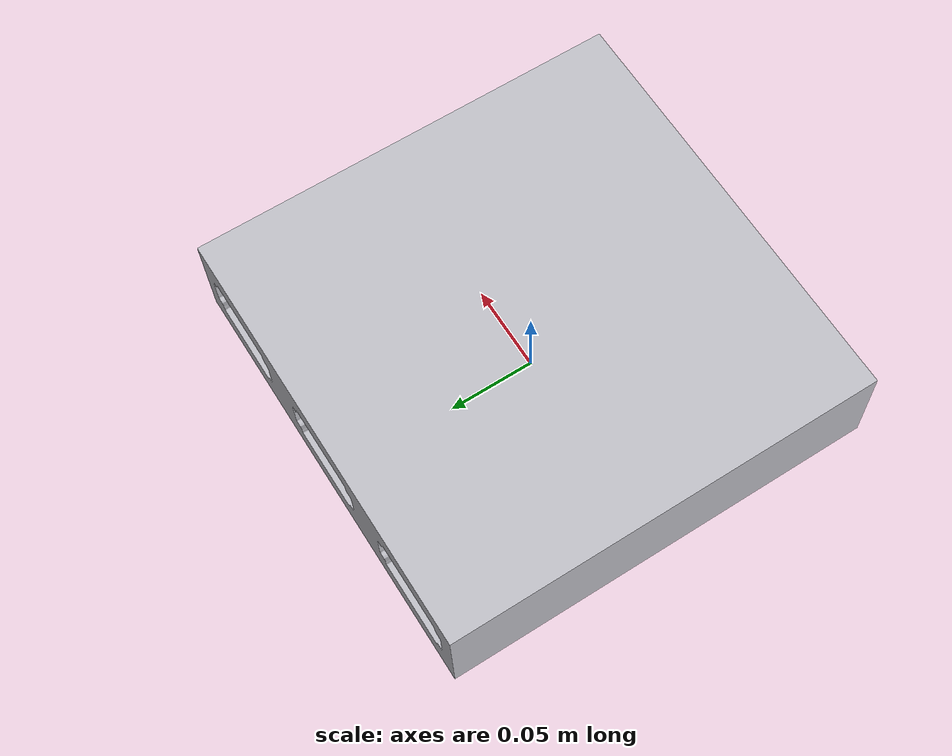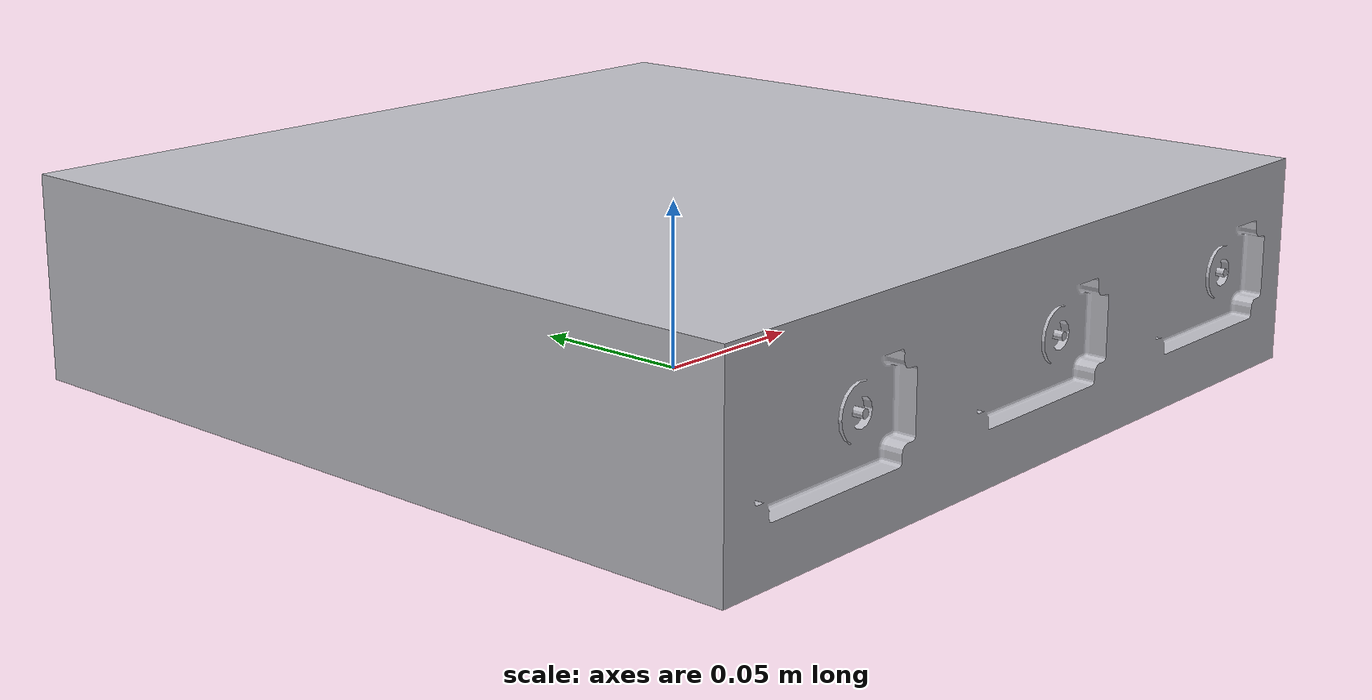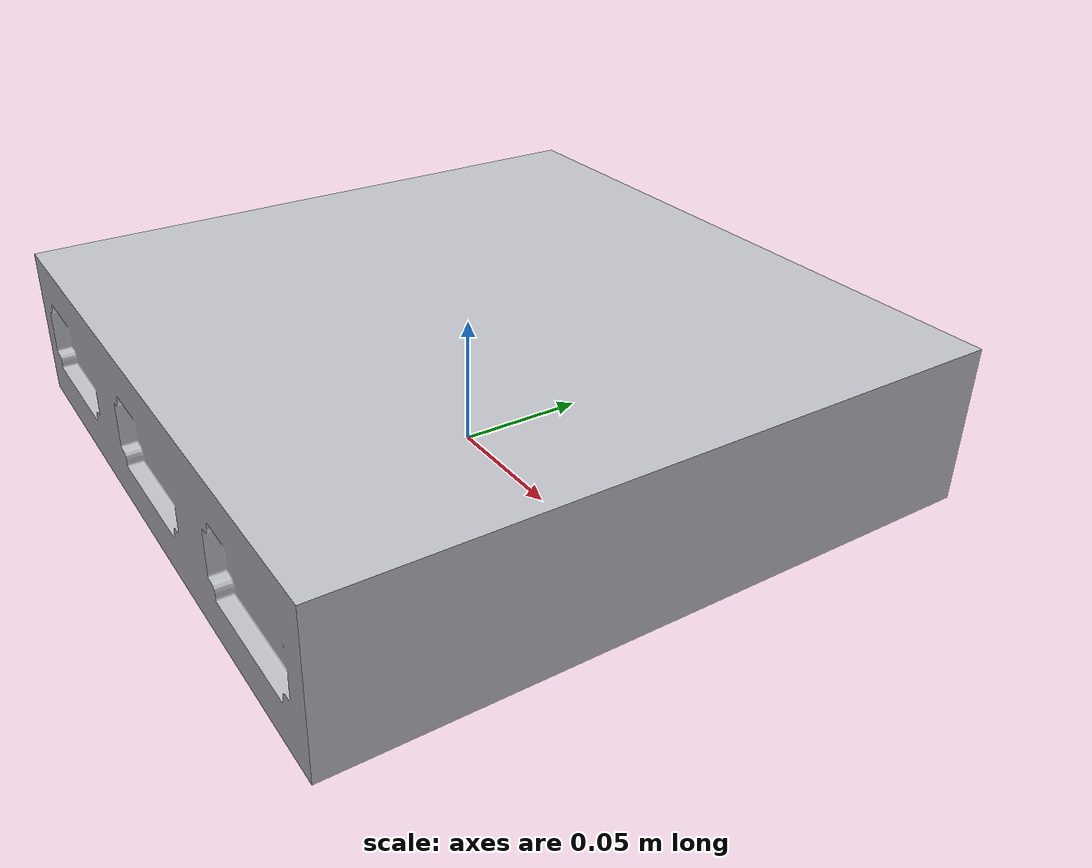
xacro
<?xml version="1.0" ?>
<robot name="cuerpo" xmlns:xacro="http://www.ros.org/wiki/xacro">

<!--xacro:include filename="$(find romerin_description)/urdf/materials.xacro" /-->
<xacro:include filename="$(find romerin_description)/urdf/cuerpo.trans" />
<xacro:include filename="$(find romerin_description)/urdf/cuerpo.gazebo" />
<link name="cuerpo">
  <inertial>
    <origin rpy="0 0 0" xyz="1.2607010642475455e-06 -1.9705023201073385e-17 0.030000000000039998"/>
    <mass value="28.985638173838137"/>
    <inertia ixx="0.155393" ixy="-0.0" ixz="-0.0" iyy="0.159826" iyz="-0.0" izz="0.297615"/>
  </inertial>
  <visual>
    <origin rpy="0 0 0" xyz="0 0 0"/>
    <geometry>
      <mesh filename="package://romerin_description/meshes/cuerpo/cuerpo.stl" scale="0.001 0.001 0.001"/>
    </geometry>
    <material name="silver"/>
  </visual>
  <collision>
    <origin rpy="0 0 0" xyz="0 0 0"/>
    <geometry>
      <mesh filename="package://romerin_description/meshes/cuerpo/cuerpo.stl" scale="0.001 0.001 0.001"/>
    </geometry>
  </collision>
</link>

</robot>

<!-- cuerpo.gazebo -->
<robot name="cuerpo" xmlns:xacro="http://www.ros.org/wiki/xacro" >

<xacro:property name="body_color" value="Gazebo/Silver" />

<gazebo>
  <plugin filename="libgazebo_ros_control.so" name="control"/>
</gazebo>
<gazebo reference="base_link">
  <material>${body_color}</material>
  <mu1>0.2</mu1>
  <mu2>0.2</mu2>
  <selfCollide>true</selfCollide>
  <gravity>true</gravity>
</gazebo>

</robot>
